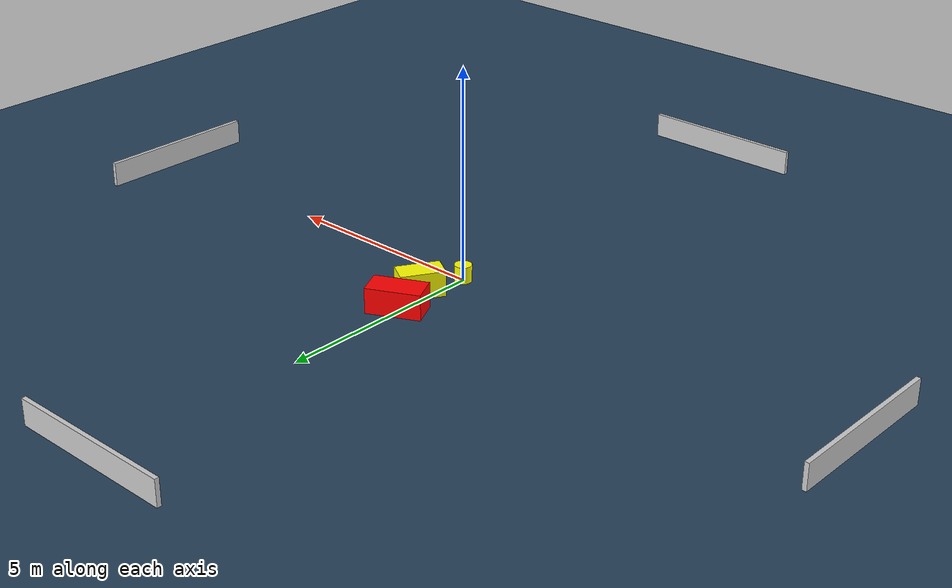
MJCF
<?xml version="1.0" ?>
<mujoco model="generated_environment">
  <option timestep="0.01" integrator="RK4" cone="elliptic"/>
  <default>
    <geom density="1"/>
  </default>
  <asset>
    <texture builtin="gradient" height="3072" name="skybox" rgb1="0.3 0.5 0.7" rgb2="0 0 0" type="skybox" width="512"/>
    <texture builtin="checker" height="300" name="groundplane" rgb1="0.2 0.3 0.4" rgb2="0.1 0.2 0.3" type="2d" width="300"/>
    <material name="groundplane" reflectance="0.2" texrepeat="5 5" texture="groundplane"/>
  </asset>
  <worldbody>
    <light dir="0 0 -1" directional="true" pos="0 0 1.5"/>
    <geom condim="3" friction="0.5 0.005 0.001" material="groundplane" name="floor" pos="0 0 0" size="0 0 0.05" type="plane"/>
    <body name="walls">
      <geom name="wall_1" condim="4" pos="-10.0 0.0 0.3" rgba="0.800000011920929 0.800000011920929 0.800000011920929 1.0" size="0.05 2.0 0.3" type="box"/>
      <geom name="wall_2" condim="4" pos="10.0 0.0 0.3" rgba="0.800000011920929 0.800000011920929 0.800000011920929 1.0" size="0.05 2.0 0.3" type="box"/>
      <geom name="wall_3" condim="4" pos="0.0 -10.0 0.3" rgba="0.800000011920929 0.800000011920929 0.800000011920929 1.0" size="2.0 0.05 0.3" type="box"/>
      <geom name="wall_4" condim="4" pos="0.0 10.0 0.3" rgba="0.800000011920929 0.800000011920929 0.800000011920929 1.0" size="2.0 0.05 0.3" type="box"/>
    </body>
    <body name="robot">
      <joint name="joint_x" type="slide" pos="0 0 0" axis="1 0 0"/>
      <joint name="joint_y" type="slide" pos="0 0 0" axis="0 1 0"/>
      <geom name="robot" type="cylinder" pos="0.0 0.0 0.2" size="0.2 0.2 0.0" mass="5.0" friction="1.0 0.005 0.0001" condim="4" rgba="1.0 1.0 0.0 1.0"/>
    </body>
    <body name="obstacle_1_movable">
      <geom name="obstacle_1_movable" condim="4" pos="0.26164614828726873 1.0963318563054203 0.3" euler="0 0 329.01321162298416" friction="0.0 0.005 0.001" rgba="1.0 1.0 0.0 1.0" size="0.27655298639415327 0.5149993915284932 0.3" type="box" mass="0.1"/>
      <joint type="free"/>
    </body>
    <body name="obstacle_2_static">
      <geom name="obstacle_2_static" condim="4" pos="0.0843569321824717 1.9921412479909333 0.3" euler="0 0 116.02791941174166" friction="0.0 0.005 0.001" rgba="1.0 0.0 0.0 1.0" size="0.3320638882558299 0.6269287570116369 0.3" type="box"/>
    </body>
  </worldbody>
  <actuator>
    <motor name="actuator_x" joint="joint_x" gear="1" ctrlrange="-1 1"/>
    <motor name="actuator_y" joint="joint_y" gear="1" ctrlrange="-1 1"/>
  </actuator>
</mujoco>
